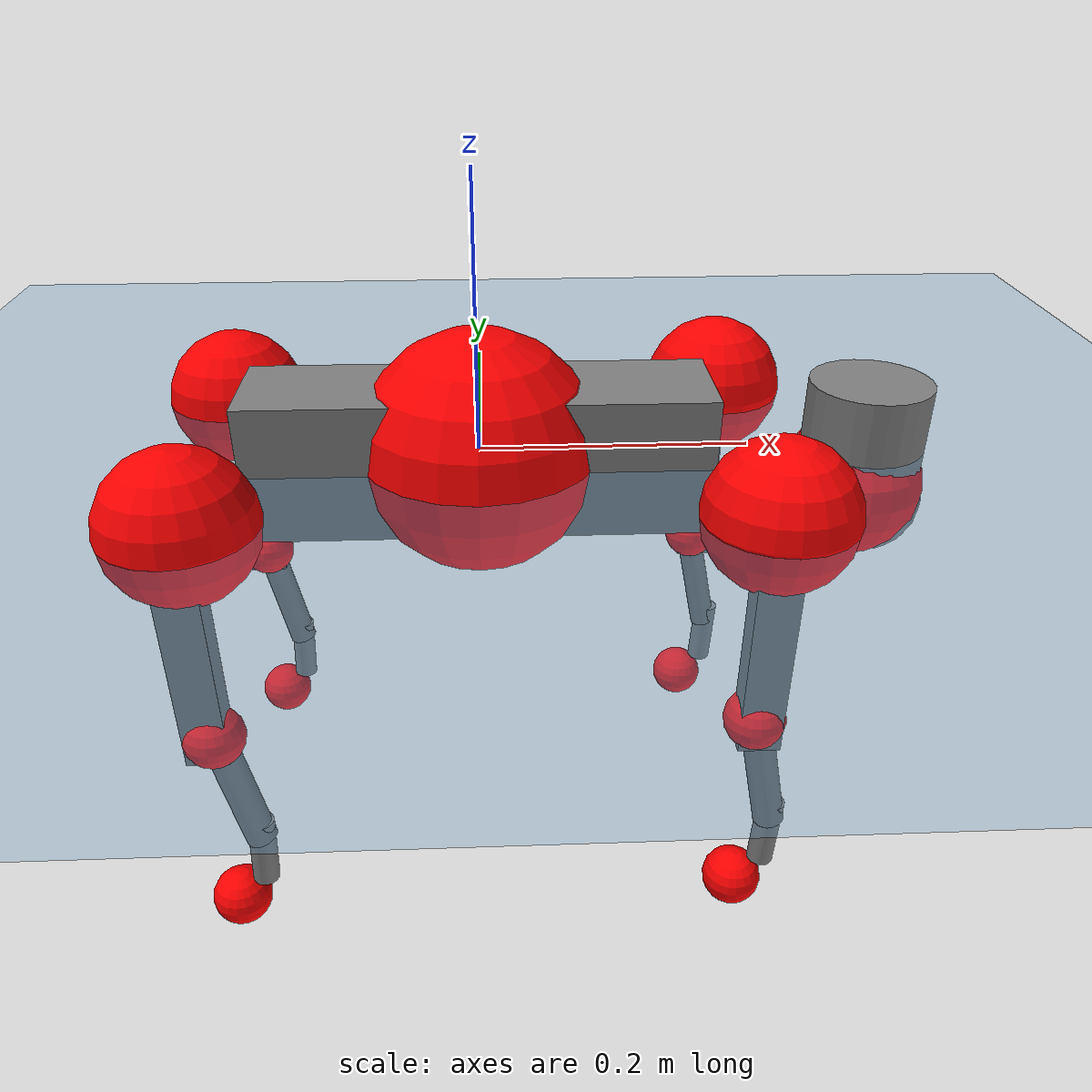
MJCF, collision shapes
<mujoco model="go2">
  <compiler angle="radian" assetdir="assets" balanceinertia="true" inertiafromgeom="false"/>

  <option timestep="0.005" density="1.2" viscosity="2e-05"/>

  <size nkey="1"/>

  <visual>
    <quality shadowsize="8192"/>
    <map shadowclip="0.5"/>
  </visual>

  <default>
    <default class="/">
      <geom contype="0" conaffinity="0" group="1" solref="-1000 -80"/>
      <site size="0.01 0.005 0.005" group="5"/>
      <general forcelimited="true" biastype="affine" gainprm="20" biasprm="0 -20 -0.5"/>
      <default class="go2">
        <joint armature="0.01" damping="0.01" frictionloss="0.2"/>
        <geom condim="1" margin="0.001"/>
        <default class="visual">
          <geom type="mesh" group="2"/>
        </default>
        <default class="collision">
          <geom group="3"/>
          <default class="foot">
            <geom size="0.022 0 0" condim="6" priority="1" friction="0.8 0.02 0.01" solimp="0.015 1 0.022"/>
          </default>
        </default>
        <default class="reward_collision_sphere">
          <geom group="5" rgba="1 0 0 1"/>
        </default>
      </default>
    </default>
  </default>

  <asset>
    <texture type="skybox" colorspace="auto" name="//unnamed_texture_0" builtin="gradient" rgb1="0.95 0.95 0.95" rgb2="0.95 0.95 0.95" width="100" height="600"/>
    <texture type="2d" colorspace="auto" name="texplane" builtin="checker" rgb1="0.345 0.575 0.748" rgb2="0.345 0.575 0.748" markrgb="1 1 1" width="512" height="512"/>
    <material name="MatPlane" class="/" texture="texplane" texuniform="true" texrepeat="2 2" specular="0.9"/>
    <material name="metal" class="/" rgba="0.9 0.95 0.95 1"/>
    <material name="black" class="/" rgba="0 0 0 1"/>
    <material name="white" class="/"/>
    <material name="gray" class="/" rgba="0.671705 0.692426 0.77427 1"/>
    <mesh name="base_0" class="/" file="base_0.obj"/>
    <mesh name="base_1" class="/" file="base_1.obj"/>
    <mesh name="base_2" class="/" file="base_2.obj"/>
    <mesh name="base_3" class="/" file="base_3.obj"/>
    <mesh name="base_4" class="/" file="base_4.obj"/>
    <mesh name="hip_0" class="/" file="hip_0.obj"/>
    <mesh name="hip_1" class="/" file="hip_1.obj"/>
    <mesh name="thigh_0" class="/" file="thigh_0.obj"/>
    <mesh name="thigh_1" class="/" file="thigh_1.obj"/>
    <mesh name="thigh_mirror_0" class="/" file="thigh_mirror_0.obj"/>
    <mesh name="thigh_mirror_1" class="/" file="thigh_mirror_1.obj"/>
    <mesh name="calf_0" class="/" file="calf_0.obj"/>
    <mesh name="calf_1" class="/" file="calf_1.obj"/>
    <mesh name="calf_mirror_0" class="/" file="calf_mirror_0.obj"/>
    <mesh name="calf_mirror_1" class="/" file="calf_mirror_1.obj"/>
    <mesh name="foot" class="/" file="foot.obj"/>
  </asset>

  <worldbody>
    <geom name="floor" class="/" size="100 100 0.125" type="plane" group="0" material="MatPlane"/>
    <light name="toplight_shadow" class="/" pos="0 0 5" dir="0.0990148 0.0990148 -0.990148" type="directional" ambient="0.04 0.04 0.04" diffuse="0.55 0.55 0.55" specular="0.12 0.12 0.12"/>
    <light name="toplight_fill" class="/" pos="0 0 5" dir="0.0990148 0.0990148 -0.990148" type="directional" castshadow="false" ambient="0.04 0.04 0.04" diffuse="0.3 0.3 0.3" specular="0.08 0.08 0.08"/>
    <body name="trunk" childclass="go2" pos="0.000198232 -0.000155119 -0.000606586" quat="1 -2.10632e-05 -0.000249986 -5.81067e-05">
      <inertial pos="0.0216552 -0.00242677 -0.00420582" quat="-0.000909722 0.712724 -0.00121066 0.701443" mass="5.08926" diaginertia="0.106933 0.0743459 0.00567689"/>
      <joint name="//unnamed_joint_0" type="free" armature="0" damping="0" frictionloss="0"/>
      <geom name="//unnamed_geom_1" class="visual" material="black" mesh="base_0"/>
      <geom name="//unnamed_geom_2" class="visual" material="black" mesh="base_1"/>
      <geom name="//unnamed_geom_3" class="visual" material="black" mesh="base_2"/>
      <geom name="//unnamed_geom_4" class="visual" material="white" mesh="base_3"/>
      <geom name="//unnamed_geom_5" class="visual" material="gray" mesh="base_4"/>
      <geom name="trunk_1" class="collision" size="0.169822 0.0422072 0.0514612" type="box"/>
      <geom name="trunk_2" class="collision" size="0.0451414 0.0406272" pos="0.287384 0 0.00750253" type="cylinder"/>
      <geom name="trunk_3" class="collision" size="0.0424329" pos="0.295451 0 -0.0450152"/>
      <geom name="//unnamed_geom_9" class="reward_collision_sphere" size="0.0902827"/>
      <geom name="//unnamed_geom_10" class="reward_collision_sphere" size="0.0541696" pos="0.282343 0 -0.0337614"/>
      <site name="imu" pos="-0.0126266 -0.00916945 0.0446888" size="0.00902827"/>
      <camera name="track" pos="0 -1.89973 0" quat="0.707107 0.707107 0 0" mode="trackcom"/>
      <camera name="ego_camera" pos="0.31461 0 0.0337614" quat="-0.5 -0.5 0.5 0.5"/>
      <body name="FL_hip" pos="0.19363 0.0429818 0.00521983" quat="0.999999 -0.000508046 -0.000625822 0.000678417">
        <inertial pos="-0.00436055 0.00242996 -0.00212827" quat="0.497721 0.500681 0.509938 0.491484" mass="0.467174" diaginertia="0.000889041 0.00043491 0.000112693"/>
        <joint name="FL_hip_joint" pos="0 0 0" axis="0.999984 -0.00153482 0.00536232" stiffness="0.00251977" range="-1.09733 1.05835" armature="0.00970558" damping="0.0159691" frictionloss="0.186584"/>
        <geom name="//unnamed_geom_11" class="visual" material="metal" mesh="hip_0"/>
        <geom name="//unnamed_geom_12" class="visual" material="gray" mesh="hip_1"/>
        <geom name="//unnamed_geom_13" class="collision" size="0.0415301 0.0180565" pos="0 0.075989 0" quat="0.707107 0.707107 0 0" type="cylinder"/>
        <geom name="//unnamed_geom_14" class="reward_collision_sphere" size="0.0541696" pos="0 0.0664904 0"/>
        <body name="FL_thigh" pos="0.000430038 0.0898494 0.00278896" quat="1 0.000211109 -4.15385e-05 1.78456e-05">
          <inertial pos="-0.00307063 -0.0205504 -0.0263812" quat="0.829485 0.0835513 -0.0204587 0.551866" mass="0.889653" diaginertia="0.00614226 0.00459081 0.000220556"/>
          <joint name="FL_thigh_joint" pos="0 0 0" axis="0.0070076 0.999949 0.00723889" range="-1.59473 3.54076" armature="0.0100734" damping="0.00114128" frictionloss="0.188568"/>
          <geom name="//unnamed_geom_15" class="visual" material="metal" mesh="thigh_0"/>
          <geom name="//unnamed_geom_16" class="visual" material="gray" mesh="thigh_1"/>
          <geom name="//unnamed_geom_17" class="collision" size="0.0961511 0.0110596 0.0153481" pos="0 0 -0.0799019" quat="0.707107 0 0.707107 0" type="box"/>
          <body name="FL_calf" pos="-0.00303562 0.000596061 -0.15968" quat="0.999999 0.000236329 0.000496787 -0.000861298">
            <inertial pos="0.00618674 -0.000588136 -0.105024" quat="0.711009 0.000553876 -0.00410103 0.703171" mass="0.171202" diaginertia="0.00154964 0.00115952 1.264e-05"/>
            <joint name="FL_calf_joint" pos="0 0 0" axis="0.001168 0.999999 0.000986074" stiffness="0.00465343" range="-2.70188 -0.874624" armature="0.00800645" damping="0.00340648" frictionloss="0.175325"/>
            <geom name="//unnamed_geom_18" class="visual" material="gray" mesh="calf_0"/>
            <geom name="//unnamed_geom_19" class="visual" material="black" mesh="calf_1"/>
            <geom name="FL_calf0" class="collision" size="0.0108339 0.0541696" pos="0.00806693 0 -0.0450152" quat="0.994493 0 -0.104807 0" type="cylinder"/>
            <geom name="//unnamed_geom_21" class="collision" size="0.0099311 0.0293419" pos="0.0201673 0 -0.111037" quat="0.999688 0 0.0249974 0" type="cylinder"/>
            <geom name="//unnamed_geom_22" class="visual" pos="0 0 -0.159804" quat="1 0 0 0" material="black" mesh="foot"/>
            <geom name="FL_foot" class="foot" size="0.0170815" pos="-0.00201673 0 -0.159804"/>
            <geom name="//unnamed_geom_24" class="reward_collision_sphere" size="0.0225707"/>
            <geom name="//unnamed_geom_25" class="reward_collision_sphere" size="0.0225707" pos="-0.00201673 0 -0.159804"/>
            <site name="FL_foot" class="foot" pos="-0.00201673 0 -0.159804" size="0.00902827"/>
          </body>
        </body>
      </body>
      <body name="FR_hip" pos="0.198527 -0.0461495 0.00115005" quat="1 2.57746e-06 5.18675e-06 -7.05862e-05">
        <inertial pos="-0.00545189 -0.00100717 -0.00247591" quat="0.496209 0.508611 0.498183 0.496896" mass="0.525056" diaginertia="0.000934681 0.000456958 0.000113903"/>
        <joint name="FR_hip_joint" pos="0 0 0" axis="1 -7.88836e-05 -1.15325e-05" stiffness="0.00971285" range="-1.05033 1.08698" armature="0.00938537" damping="0.0229554" frictionloss="0.169602"/>
        <geom name="//unnamed_geom_26" class="visual" pos="0 1.73892e-09 7.45859e-08" quat="4.63268e-05 1 0 0" material="metal" mesh="hip_0"/>
        <geom name="//unnamed_geom_27" class="visual" pos="0 2.819e-09 -1.84479e-07" quat="4.63268e-05 1 0 0" material="gray" mesh="hip_1"/>
        <geom name="//unnamed_geom_28" class="collision" size="0.0415301 0.0180565" pos="0 -0.075989 0" quat="0.707107 0.707107 0 0" type="cylinder"/>
        <geom name="//unnamed_geom_29" class="reward_collision_sphere" size="0.0541696" pos="0 -0.0664904 0"/>
        <body name="FR_thigh" pos="-0.00298496 -0.0896795 0.00242972" quat="0.999999 0.00122306 3.90546e-05 -0.000619333">
          <inertial pos="-0.00377382 0.0195838 -0.0245242" quat="0.548981 -0.0205189 0.0859496 0.831151" mass="0.790385" diaginertia="0.00608447 0.00419552 0.000205489"/>
          <joint name="FR_thigh_joint" pos="0 0 0" axis="0.0129593 -0.999874 0.00912792" stiffness="0.00430227" range="-3.56222 1.60914" armature="0.00867263" damping="0.00794987" frictionloss="0.15899"/>
          <geom name="//unnamed_geom_30" class="visual" material="metal" mesh="thigh_mirror_0"/>
          <geom name="//unnamed_geom_31" class="visual" material="gray" mesh="thigh_mirror_1"/>
          <geom name="//unnamed_geom_32" class="collision" size="0.0961511 0.0110596 0.0153481" pos="0 0 -0.0799019" quat="0.707107 0 0.707107 0" type="box"/>
          <body name="FR_calf" pos="-0.00210313 0.00283887 -0.157686" quat="0.999999 -7.95812e-05 -0.000783329 0.000801596">
            <inertial pos="0.00396015 -0.00180561 -0.109094" quat="0.695638 -0.00283337 -0.00535707 0.718367" mass="0.184867" diaginertia="0.00157243 0.0011324 1.26452e-05"/>
            <joint name="FR_calf_joint" pos="0 0 0" axis="0.0083122 -0.999748 0.0208462" range="0.888912 2.73398" armature="0.00906444" damping="0.0119535" frictionloss="0.212883"/>
            <geom name="//unnamed_geom_33" class="visual" material="gray" mesh="calf_mirror_0"/>
            <geom name="//unnamed_geom_34" class="visual" material="black" mesh="calf_mirror_1"/>
            <geom name="FR_calf0" class="collision" size="0.0117368 0.0541696" pos="0.0100837 0 -0.0450152" quat="0.995004 0 -0.0998334 0" type="cylinder"/>
            <geom name="//unnamed_geom_36" class="collision" size="0.0099311 0.0293419" pos="0.0201673 0 -0.111037" quat="0.999688 0 0.0249974 0" type="cylinder"/>
            <geom name="//unnamed_geom_37" class="visual" pos="0 0 -0.159804" quat="1 0 0 0" material="black" mesh="foot"/>
            <geom name="FR_foot" class="foot" size="0.0217581" pos="-0.00201673 0 -0.159804"/>
            <geom name="//unnamed_geom_39" class="reward_collision_sphere" size="0.0225707"/>
            <geom name="//unnamed_geom_40" class="reward_collision_sphere" size="0.0225707" pos="-0.00201673 0 -0.159804"/>
            <site name="FR_foot" class="foot" pos="-0.00201673 0 -0.159804" size="0.00902827"/>
          </body>
        </body>
      </body>
      <body name="RL_hip" pos="-0.197751 0.0442739 -0.000542704" quat="0.999999 -0.00111632 5.03482e-05 -0.000386431">
        <inertial pos="0.00329207 0.00278631 0.00225528" quat="0.507699 0.482173 0.497752 0.511853" mass="0.522686" diaginertia="0.000951771 0.000467035 0.000110683"/>
        <joint name="RL_hip_joint" pos="0 0 0" axis="-0.999984 -0.0054566 -0.00154952" stiffness="0.00188148" range="-0.998782 1.00403" armature="0.0091319" damping="0.00220881" frictionloss="0.198934"/>
        <geom name="//unnamed_geom_41" class="visual" pos="-2.24858e-09 0 -4.40773e-07" quat="4.63268e-05 0 1 0" material="metal" mesh="hip_0"/>
        <geom name="//unnamed_geom_42" class="visual" pos="-3.64521e-09 0 -3.90903e-07" quat="4.63268e-05 0 1 0" material="gray" mesh="hip_1"/>
        <geom name="//unnamed_geom_43" class="collision" size="0.0415301 0.0180565" pos="0 0.075989 0" quat="0.707107 0.707107 0 0" type="cylinder"/>
        <geom name="//unnamed_geom_44" class="reward_collision_sphere" size="0.0541696" pos="0 0.0664904 0"/>
        <body name="RL_thigh" pos="-0.000680703 0.0911508 9.63164e-05" quat="0.999999 0.000351834 -0.000918437 0.000198927">
          <inertial pos="-0.00625502 -0.021783 -0.0247025" quat="0.834181 0.0865009 -0.0289401 0.543895" mass="0.829915" diaginertia="0.00589091 0.00430216 0.000209042"/>
          <joint name="RL_thigh_joint" pos="0 0 0" axis="0.0126379 0.999854 -0.0114623" stiffness="0.00885152" range="-0.534503 4.53822" armature="0.00908924" damping="0" frictionloss="0.184411"/>
          <geom name="//unnamed_geom_45" class="visual" material="metal" mesh="thigh_0"/>
          <geom name="//unnamed_geom_46" class="visual" material="gray" mesh="thigh_1"/>
          <geom name="//unnamed_geom_47" class="collision" size="0.0961511 0.0110596 0.0153481" pos="0 0 -0.0799019" quat="0.707107 0 0.707107 0" type="box"/>
          <body name="RL_calf" pos="-6.94933e-05 -0.00146957 -0.159742" quat="1 2.38116e-05 -1.26155e-05 0.000213488">
            <inertial pos="0.00634088 -0.00299115 -0.106869" quat="0.710908 0.000940537 -0.00502619 0.703267" mass="0.171254" diaginertia="0.00142486 0.0010501 1.13737e-05"/>
            <joint name="RL_calf_joint" pos="0 0 0" axis="-0.00253688 0.999997 0.000485509" stiffness="0.00129633" range="-2.73213 -0.753522" armature="0.00923775" damping="0.00591246" frictionloss="0.200359"/>
            <geom name="//unnamed_geom_48" class="visual" material="gray" mesh="calf_0"/>
            <geom name="//unnamed_geom_49" class="visual" material="black" mesh="calf_1"/>
            <geom name="RL_calf0" class="collision" size="0.0117368 0.0541696" pos="0.0100837 0 -0.0450152" quat="0.995004 0 -0.0998334 0" type="cylinder"/>
            <geom name="//unnamed_geom_51" class="collision" size="0.0099311 0.0293419" pos="0.0201673 0 -0.111037" quat="0.999688 0 0.0249974 0" type="cylinder"/>
            <geom name="//unnamed_geom_52" class="visual" pos="0 0 -0.159804" quat="1 0 0 0" material="black" mesh="foot"/>
            <geom name="RL_foot" class="foot" size="0.0210211" pos="-0.00201673 0 -0.159804"/>
            <geom name="//unnamed_geom_54" class="reward_collision_sphere" size="0.0225707"/>
            <geom name="//unnamed_geom_55" class="reward_collision_sphere" size="0.0225707" pos="-0.00201673 0 -0.159804"/>
            <site name="RL_foot" class="foot" pos="-0.00201673 0 -0.159804" size="0.00902827"/>
          </body>
        </body>
      </body>
      <body name="RR_hip" pos="-0.194481 -0.0437004 0.000668014" quat="1 -0.000615477 0.000119895 1.93904e-05">
        <inertial pos="0.00769498 0.000544938 -0.00243203" quat="0.484609 0.504054 0.498944 0.511994" mass="0.476256" diaginertia="0.00092428 0.000442393 0.000111942"/>
        <joint name="RR_hip_joint" pos="0 0 0" axis="-0.999841 0.0170874 0.00500834" range="-1.0304 1.09601" armature="0.00964599" damping="0.00789684" frictionloss="0.192538"/>
        <geom name="//unnamed_geom_56" class="visual" pos="2.24655e-09 1.73892e-09 -5.15359e-07" quat="2.14617e-09 4.63268e-05 4.63268e-05 -1" material="metal" mesh="hip_0"/>
        <geom name="//unnamed_geom_57" class="visual" pos="3.65022e-09 2.819e-09 -2.06424e-07" quat="2.14617e-09 4.63268e-05 4.63268e-05 -1" material="gray" mesh="hip_1"/>
        <geom name="//unnamed_geom_58" class="collision" size="0.0415301 0.0180565" pos="0 -0.075989 0" quat="0.707107 0.707107 0 0" type="cylinder"/>
        <geom name="//unnamed_geom_59" class="reward_collision_sphere" size="0.0541696" pos="0 -0.0664904 0"/>
        <body name="RR_thigh" pos="-0.000831284 -0.0901723 0.00276999" quat="1 -0.000169459 -0.000518286 0.000367101">
          <inertial pos="-0.00324686 0.0174449 -0.0228113" quat="0.551196 -0.0198595 0.084391 0.829859" mass="0.88964" diaginertia="0.00648395 0.00477032 0.000216286"/>
          <joint name="RR_thigh_joint" pos="0 0 0" axis="-0.00347704 -0.999989 -0.00303104" range="-4.488 0.56366" armature="0.00725415" damping="0.0169459" frictionloss="0.204397"/>
          <geom name="//unnamed_geom_60" class="visual" material="metal" mesh="thigh_mirror_0"/>
          <geom name="//unnamed_geom_61" class="visual" material="gray" mesh="thigh_mirror_1"/>
          <geom name="//unnamed_geom_62" class="collision" size="0.0961511 0.0110596 0.0153481" pos="0 0 -0.0799019" quat="0.707107 0 0.707107 0" type="box"/>
          <body name="RR_calf" pos="0.004092 0.000225819 -0.159612" quat="1 6.11892e-05 -1.58711e-05 0.000189748">
            <inertial pos="0.00841035 0.00130538 -0.105191" quat="0.710663 -0.00859129 0.00903639 0.703422" mass="0.176563" diaginertia="0.00155298 0.00106573 1.17172e-05"/>
            <joint name="RR_calf_joint" pos="0 0 0" axis="-0.000428241 -0.999963 -0.00861078" range="0.831044 2.69568" armature="0.0090799" damping="0.0115728" frictionloss="0.195493"/>
            <geom name="//unnamed_geom_63" class="visual" material="gray" mesh="calf_mirror_0"/>
            <geom name="//unnamed_geom_64" class="visual" material="black" mesh="calf_mirror_1"/>
            <geom name="RR_calf0" class="collision" size="0.0117368 0.0541696" pos="0.0100837 0 -0.0450152" quat="0.995004 0 -0.0998334 0" type="cylinder"/>
            <geom name="//unnamed_geom_66" class="collision" size="0.0099311 0.0293419" pos="0.0201673 0 -0.111037" quat="0.999688 0 0.0249974 0" type="cylinder"/>
            <geom name="//unnamed_geom_67" class="visual" pos="0 0 -0.159804" quat="1 0 0 0" material="black" mesh="foot"/>
            <geom name="RR_foot" class="foot" size="0.0223032" pos="-0.00201673 0 -0.159804"/>
            <geom name="//unnamed_geom_69" class="reward_collision_sphere" size="0.0225707"/>
            <geom name="//unnamed_geom_70" class="reward_collision_sphere" size="0.0225707" pos="-0.00201673 0 -0.159804"/>
            <site name="RR_foot" class="foot" pos="-0.00201673 0 -0.159804" size="0.00902827"/>
          </body>
        </body>
      </body>
    </body>
  </worldbody>

  <contact>
    <pair class="/" geom1="floor" geom2="FL_foot" name="//unnamed_contact_0"/>
    <pair class="/" geom1="floor" geom2="FR_foot" name="//unnamed_contact_1"/>
    <pair class="/" geom1="floor" geom2="RL_foot" name="//unnamed_contact_2"/>
    <pair class="/" geom1="floor" geom2="RR_foot" name="//unnamed_contact_3"/>
  </contact>

  <actuator>
    <general name="FL_hip" class="/" joint="FL_hip_joint" forcerange="-20.003 20.003" gainprm="17.0971" biasprm="0 -17.0971 -0.480497"/>
    <general name="FL_thigh" class="/" joint="FL_thigh_joint" forcerange="-24.219 24.219" gainprm="17.0971" biasprm="0 -17.0971 -0.480497"/>
    <general name="FL_calf" class="/" joint="FL_calf_joint" forcerange="-44.8555 44.8555" gainprm="17.0971" biasprm="0 -17.0971 -0.480497"/>
    <general name="FR_hip" class="/" joint="FR_hip_joint" forcerange="-19.3184 19.3184" gainprm="17.0971" biasprm="0 -17.0971 -0.480497"/>
    <general name="FR_thigh" class="/" joint="FR_thigh_joint" forcerange="-23.5022 23.5022" gainprm="17.0971" biasprm="0 -17.0971 -0.480497"/>
    <general name="FR_calf" class="/" joint="FR_calf_joint" forcerange="-37.2283 37.2283" gainprm="17.0971" biasprm="0 -17.0971 -0.480497"/>
    <general name="RL_hip" class="/" joint="RL_hip_joint" forcerange="-22.1827 22.1827" gainprm="17.0971" biasprm="0 -17.0971 -0.480497"/>
    <general name="RL_thigh" class="/" joint="RL_thigh_joint" forcerange="-21.437 21.437" gainprm="17.0971" biasprm="0 -17.0971 -0.480497"/>
    <general name="RL_calf" class="/" joint="RL_calf_joint" forcerange="-37.8781 37.8781" gainprm="17.0971" biasprm="0 -17.0971 -0.480497"/>
    <general name="RR_hip" class="/" joint="RR_hip_joint" forcerange="-24.035 24.035" gainprm="17.0971" biasprm="0 -17.0971 -0.480497"/>
    <general name="RR_thigh" class="/" joint="RR_thigh_joint" forcerange="-19.8001 19.8001" gainprm="17.0971" biasprm="0 -17.0971 -0.480497"/>
    <general name="RR_calf" class="/" joint="RR_calf_joint" forcerange="-38.1747 38.1747" gainprm="17.0971" biasprm="0 -17.0971 -0.480497"/>
  </actuator>

  <sensor>
    <gyro site="imu" name="imu_angular_velocity"/>
    <velocimeter site="imu" name="imu_linear_velocity"/>
    <framelinvel objtype="site" objname="FL_foot" name="FL_foot_global_linear_velocity"/>
    <framelinvel objtype="site" objname="FR_foot" name="FR_foot_global_linear_velocity"/>
    <framelinvel objtype="site" objname="RL_foot" name="RL_foot_global_linear_velocity"/>
    <framelinvel objtype="site" objname="RR_foot" name="RR_foot_global_linear_velocity"/>
  </sensor>

  <keyframe>
    <key name="home" qpos="0 0 0.325 1 0 0 0 0.1 0.8 -1.5 -0.1 -0.8 1.5 -0.1 0.8 -1.5 0.1 -0.8 1.5"/>
  </keyframe>
</mujoco>
